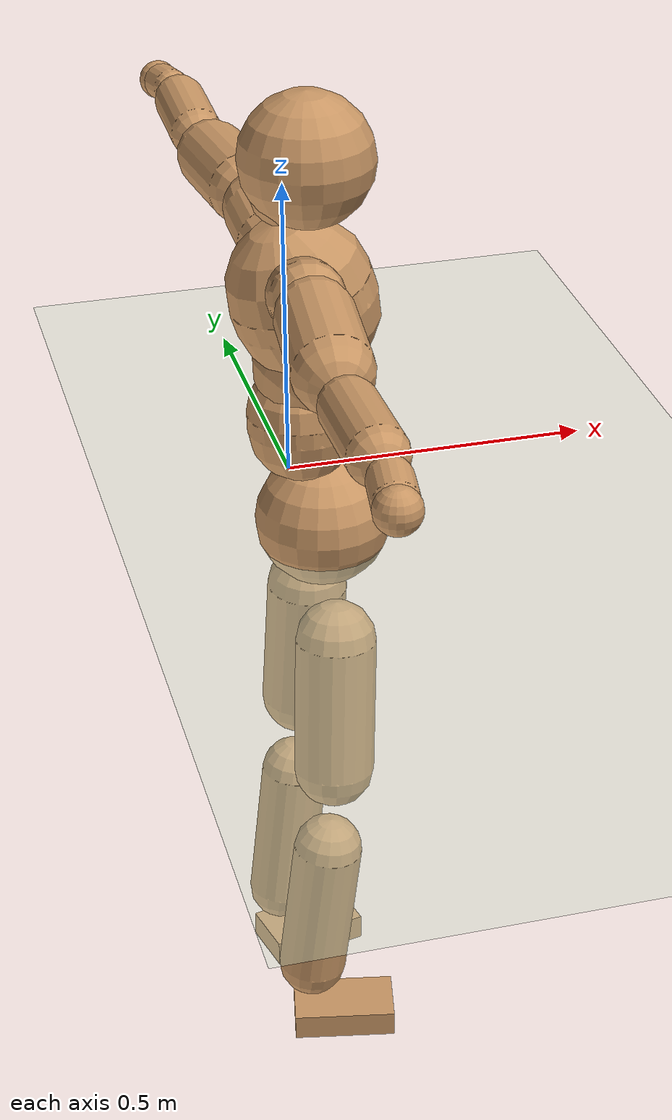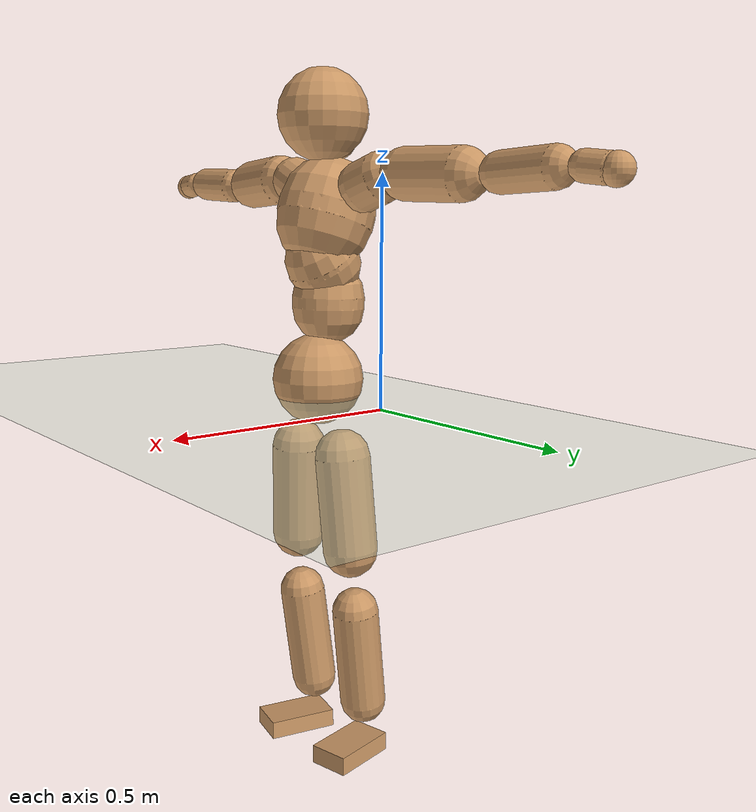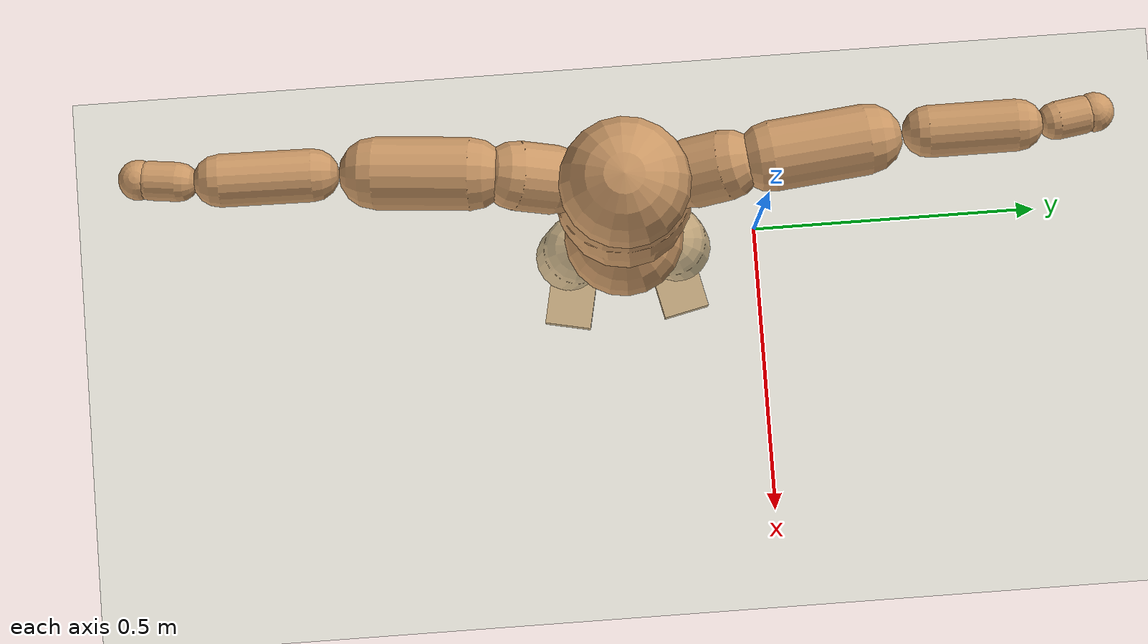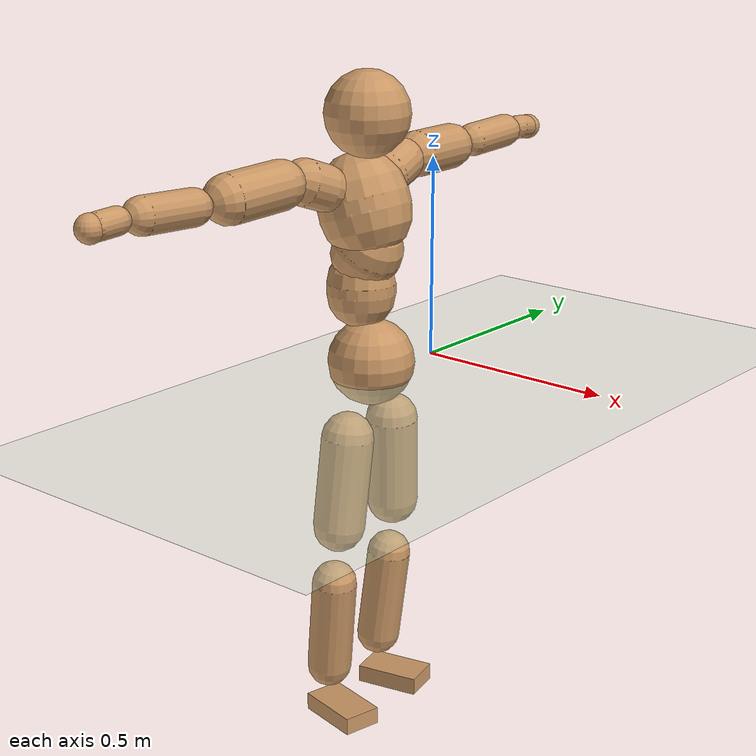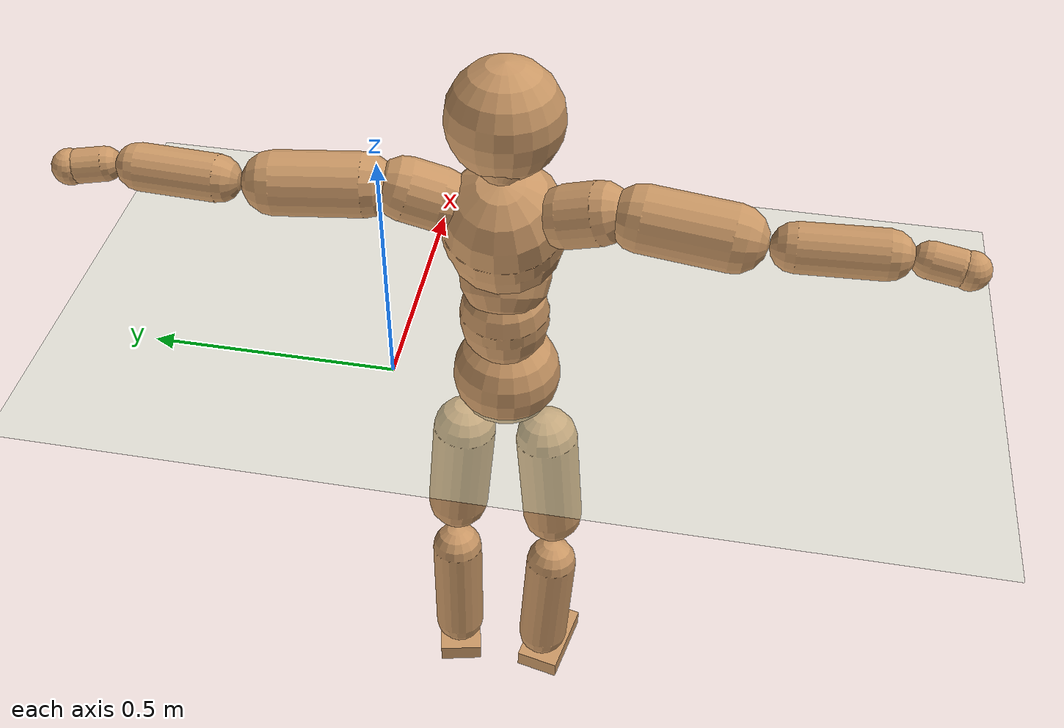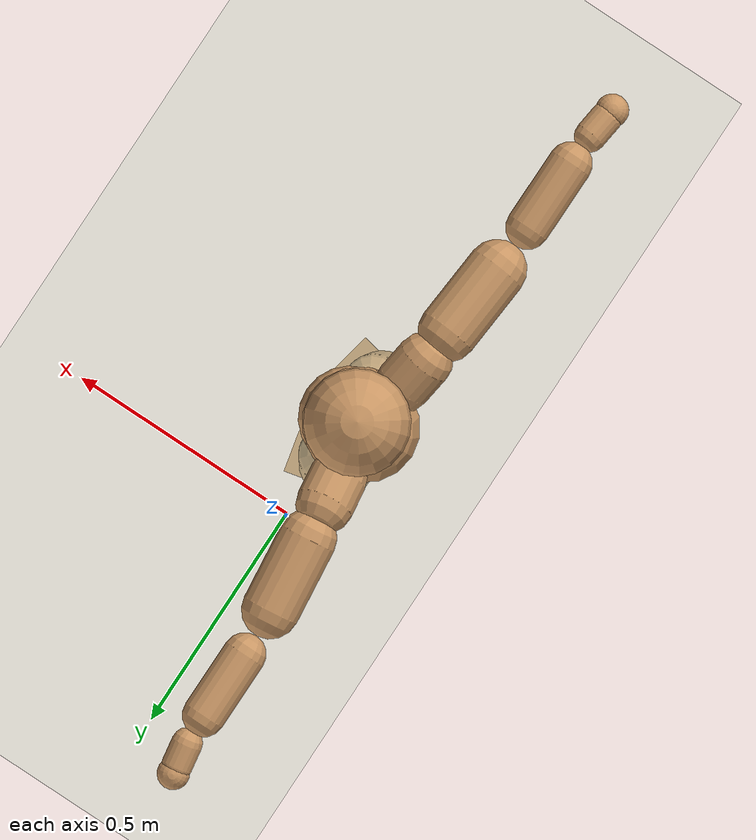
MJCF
<mujoco model="humanoid">
  <compiler coordinate="local"/>
  <default>
    <joint damping="0.0" armature="0.01" stiffness="0.0" limited="true"/>
    <geom conaffinity="1" condim="3" contype="7" margin="0.001" rgba="0.8 0.6 .4 1"/>
  </default>
  <asset>
    <texture type="skybox" builtin="gradient" rgb1=".4 .5 .6" rgb2="0 0 0" width="100" height="100"/>
    <texture builtin="flat" height="1278" mark="cross" markrgb="1 1 1" name="texgeom" random="0.01" rgb1="0.8 0.6 0.4" rgb2="0.8 0.6 0.4" type="cube" width="127"/>
    <texture builtin="checker" height="100" name="texplane" rgb1="0 0 0" rgb2="0.8 0.8 0.8" type="2d" width="100"/>
    <material name="MatPlane" reflectance="0.5" shininess="1" specular="1" texrepeat="60 60" texture="texplane"/>
    <material name="geom" texture="texgeom" texuniform="true"/>
  </asset>
  <worldbody>
    <light cutoff="100" diffuse="1 1 1" dir="-0 0 -1.3" directional="true" exponent="1" pos="0 0 1.3" specular=".1 .1 .1"/>
    <geom conaffinity="1" condim="3" name="floor" pos="0 0 0" rgba="0.8 0.9 0.8 1" size="100 100 .2" type="plane" material="MatPlane"/>
    <body name="Pelvis" pos="0.0003 -0.2325 0.0389">
      <freejoint name="Pelvis"/>
      <geom type="sphere" contype="1" conaffinity="1" density="500" size="0.1057" pos="0.0000 0.0000 0.0000" name="Pelvis"/>
      <body name="L_Hip" pos="-0.003 0.0807 -0.097">
        <joint name="L_Hip_x" type="hinge" pos="0 0 0" axis="1 0 0" stiffness="800" damping="80" armature="0.02" range="-180.0000 180.0000"/>
        <joint name="L_Hip_y" type="hinge" pos="0 0 0" axis="0 1 0" stiffness="800" damping="80" armature="0.02" range="-180.0000 180.0000"/>
        <joint name="L_Hip_z" type="hinge" pos="0 0 0" axis="0 0 1" stiffness="800" damping="80" armature="0.02" range="-180.0000 180.0000"/>
        <geom type="capsule" contype="1" conaffinity="1" density="500" fromto="-0.0034 0.0054 -0.0744 -0.0135 0.0215 -0.2978" size="0.0645" name="L_Hip"/>
        <body name="L_Knee" pos="-0.0169 0.0268 -0.3722">
          <joint name="L_Knee_x" type="hinge" pos="0 0 0" axis="1 0 0" stiffness="800" damping="80" armature="0.02" range="-180.0000 180.0000"/>
          <joint name="L_Knee_y" type="hinge" pos="0 0 0" axis="0 1 0" stiffness="800" damping="80" armature="0.02" range="-180.0000 180.0000"/>
          <joint name="L_Knee_z" type="hinge" pos="0 0 0" axis="0 0 1" stiffness="800" damping="80" armature="0.02" range="-180.0000 180.0000"/>
          <geom type="capsule" contype="1" conaffinity="1" density="500" fromto="-0.0097 -0.0024 -0.0798 -0.0388 -0.0095 -0.3194" size="0.0552" name="L_Knee"/>
          <body name="L_Ankle" pos="-0.0485 -0.0119 -0.3992">
            <joint name="L_Ankle_x" type="hinge" pos="0 0 0" axis="1 0 0" stiffness="800" damping="80" armature="0.02" range="-180.0000 180.0000"/>
            <joint name="L_Ankle_y" type="hinge" pos="0 0 0" axis="0 1 0" stiffness="800" damping="80" armature="0.02" range="-180.0000 180.0000"/>
            <joint name="L_Ankle_z" type="hinge" pos="0 0 0" axis="0 0 1" stiffness="800" damping="80" armature="0.02" range="-180.0000 180.0000"/>
            <geom type="box" contype="1" conaffinity="1" density="500" pos="0.0576 0.0130 -0.0287" size="0.0806 0.048 0.0221" quat="0.9939 0.0000 0.0000 0.1107" name="L_Ankle"/>
            <body name="L_Toe" pos="0.1153 0.026 -0.0575">
              <joint name="L_Toe_x" type="hinge" pos="0 0 0" axis="1 0 0" stiffness="500" damping="50" armature="0.02" range="-180.0000 180.0000"/>
              <joint name="L_Toe_y" type="hinge" pos="0 0 0" axis="0 1 0" stiffness="500" damping="50" armature="0.02" range="-180.0000 180.0000"/>
              <joint name="L_Toe_z" type="hinge" pos="0 0 0" axis="0 0 1" stiffness="500" damping="50" armature="0.02" range="-180.0000 180.0000"/>
              <geom type="box" contype="1" conaffinity="1" density="500" pos="0.0000 0.0000 0.0284" size="0.001 0.0024 0.0011" quat="0.9931 0.0000 0.0000 0.1169" name="L_Toe"/>
            </body>
          </body>
        </body>
      </body>
      <body name="R_Hip" pos="0.0011 -0.0779 -0.0978">
        <joint name="R_Hip_x" type="hinge" pos="0 0 0" axis="1 0 0" stiffness="800" damping="80" armature="0.02" range="-180.0000 180.0000"/>
        <joint name="R_Hip_y" type="hinge" pos="0 0 0" axis="0 1 0" stiffness="800" damping="80" armature="0.02" range="-180.0000 180.0000"/>
        <joint name="R_Hip_z" type="hinge" pos="0 0 0" axis="0 0 1" stiffness="800" damping="80" armature="0.02" range="-180.0000 180.0000"/>
        <geom type="capsule" contype="1" conaffinity="1" density="500" fromto="-0.0036 -0.0071 -0.0758 -0.0145 -0.0283 -0.3032" size="0.0637" name="R_Hip"/>
        <body name="R_Knee" pos="-0.0181 -0.0354 -0.379">
          <joint name="R_Knee_x" type="hinge" pos="0 0 0" axis="1 0 0" stiffness="800" damping="80" armature="0.02" range="-180.0000 180.0000"/>
          <joint name="R_Knee_y" type="hinge" pos="0 0 0" axis="0 1 0" stiffness="800" damping="80" armature="0.02" range="-180.0000 180.0000"/>
          <joint name="R_Knee_z" type="hinge" pos="0 0 0" axis="0 0 1" stiffness="800" damping="80" armature="0.02" range="-180.0000 180.0000"/>
          <geom type="capsule" contype="1" conaffinity="1" density="500" fromto="-0.0091 0.0030 -0.0803 -0.0366 0.0120 -0.3213" size="0.0554" name="R_Knee"/>
          <body name="R_Ankle" pos="-0.0457 0.015 -0.4016">
            <joint name="R_Ankle_x" type="hinge" pos="0 0 0" axis="1 0 0" stiffness="800" damping="80" armature="0.02" range="-180.0000 180.0000"/>
            <joint name="R_Ankle_y" type="hinge" pos="0 0 0" axis="0 1 0" stiffness="800" damping="80" armature="0.02" range="-180.0000 180.0000"/>
            <joint name="R_Ankle_z" type="hinge" pos="0 0 0" axis="0 0 1" stiffness="800" damping="80" armature="0.02" range="-180.0000 180.0000"/>
            <geom type="box" contype="1" conaffinity="1" density="500" pos="0.0600 -0.0124 -0.0253" size="0.0833 0.0481 0.0217" quat="0.9948 0.0000 0.0000 -0.1020" name="R_Ankle"/>
            <body name="R_Toe" pos="0.1201 -0.0249 -0.0507">
              <joint name="R_Toe_x" type="hinge" pos="0 0 0" axis="1 0 0" stiffness="500" damping="50" armature="0.02" range="-180.0000 180.0000"/>
              <joint name="R_Toe_y" type="hinge" pos="0 0 0" axis="0 1 0" stiffness="500" damping="50" armature="0.02" range="-180.0000 180.0000"/>
              <joint name="R_Toe_z" type="hinge" pos="0 0 0" axis="0 0 1" stiffness="500" damping="50" armature="0.02" range="-180.0000 180.0000"/>
              <geom type="box" contype="1" conaffinity="1" density="500" pos="0.0000 0.0000 0.0267" size="0.001 0.0024 0.0012" quat="0.9957 0.0000 0.0000 -0.0926" name="R_Toe"/>
            </body>
          </body>
        </body>
      </body>
      <body name="Torso" pos="-0.0302 -0.0021 0.1122">
        <joint name="Torso_x" type="hinge" pos="0 0 0" axis="1 0 0" stiffness="1000" damping="100" armature="0.02" range="-180.0000 180.0000"/>
        <joint name="Torso_y" type="hinge" pos="0 0 0" axis="0 1 0" stiffness="1000" damping="100" armature="0.02" range="-180.0000 180.0000"/>
        <joint name="Torso_z" type="hinge" pos="0 0 0" axis="0 0 1" stiffness="1000" damping="100" armature="0.02" range="-180.0000 180.0000"/>
        <geom type="capsule" contype="1" conaffinity="1" density="500" fromto="-0.0010 0.0019 0.0775 -0.0007 0.0013 0.0516" size="0.0836" name="Torso"/>
        <body name="Spine" pos="-0.0016 0.0032 0.1291">
          <joint name="Spine_x" type="hinge" pos="0 0 0" axis="1 0 0" stiffness="1000" damping="100" armature="0.02" range="-180.0000 180.0000"/>
          <joint name="Spine_y" type="hinge" pos="0 0 0" axis="0 1 0" stiffness="1000" damping="100" armature="0.02" range="-180.0000 180.0000"/>
          <joint name="Spine_z" type="hinge" pos="0 0 0" axis="0 0 1" stiffness="1000" damping="100" armature="0.02" range="-180.0000 180.0000"/>
          <geom type="capsule" contype="1" conaffinity="1" density="500" fromto="0.0206 0.0010 0.0319 0.0137 0.0007 0.0213" size="0.0852" name="Spine"/>
          <body name="Chest" pos="0.0343 0.0016 0.0531">
            <joint name="Chest_x" type="hinge" pos="0 0 0" axis="1 0 0" stiffness="1000" damping="100" armature="0.02" range="-180.0000 180.0000"/>
            <joint name="Chest_y" type="hinge" pos="0 0 0" axis="0 1 0" stiffness="1000" damping="100" armature="0.02" range="-180.0000 180.0000"/>
            <joint name="Chest_z" type="hinge" pos="0 0 0" axis="0 0 1" stiffness="1000" damping="100" armature="0.02" range="-180.0000 180.0000"/>
            <geom type="capsule" contype="1" conaffinity="1" density="500" fromto="-0.0321 -0.0004 0.0997 -0.0214 -0.0003 0.0664" size="0.1112" name="Chest"/>
            <body name="Neck" pos="-0.0682 -0.0007 0.2341">
              <joint name="Neck_x" type="hinge" pos="0 0 0" axis="1 0 0" stiffness="500" damping="50" armature="0.02" range="-180.0000 180.0000"/>
              <joint name="Neck_y" type="hinge" pos="0 0 0" axis="0 1 0" stiffness="500" damping="50" armature="0.02" range="-180.0000 180.0000"/>
              <joint name="Neck_z" type="hinge" pos="0 0 0" axis="0 0 1" stiffness="500" damping="50" armature="0.02" range="-180.0000 180.0000"/>
              <geom type="capsule" contype="1" conaffinity="1" density="500" fromto="0.0101 0.0005 0.0127 0.0404 0.0018 0.0508" size="0.0448" name="Neck"/>
              <body name="Head" pos="0.0505 0.0023 0.0635">
                <joint name="Head_x" type="hinge" pos="0 0 0" axis="1 0 0" stiffness="500" damping="50" armature="0.02" range="-180.0000 180.0000"/>
                <joint name="Head_y" type="hinge" pos="0 0 0" axis="0 1 0" stiffness="500" damping="50" armature="0.02" range="-180.0000 180.0000"/>
                <joint name="Head_z" type="hinge" pos="0 0 0" axis="0 0 1" stiffness="500" damping="50" armature="0.02" range="-180.0000 180.0000"/>
                <geom type="sphere" contype="1" conaffinity="1" density="500" size="0.1025" pos="0.0000 0.0000 0.0000" name="Head"/>
              </body>
            </body>
            <body name="L_Thorax" pos="-0.0433 0.0894 0.1335">
              <joint name="L_Thorax_x" type="hinge" pos="0 0 0" axis="1 0 0" stiffness="500" damping="50" armature="0.02" range="-180.0000 180.0000"/>
              <joint name="L_Thorax_y" type="hinge" pos="0 0 0" axis="0 1 0" stiffness="500" damping="50" armature="0.02" range="-180.0000 180.0000"/>
              <joint name="L_Thorax_z" type="hinge" pos="0 0 0" axis="0 0 1" stiffness="500" damping="50" armature="0.02" range="-180.0000 180.0000"/>
              <geom type="capsule" contype="1" conaffinity="1" density="500" fromto="-0.0024 0.0191 0.0064 -0.0095 0.0764 0.0256" size="0.0567" name="L_Thorax"/>
              <body name="L_Shoulder" pos="-0.0119 0.0955 0.032">
                <joint name="L_Shoulder_x" type="hinge" pos="0 0 0" axis="1 0 0" stiffness="500" damping="50" armature="0.02" range="-720.0000 720.0000"/>
                <joint name="L_Shoulder_y" type="hinge" pos="0 0 0" axis="0 1 0" stiffness="500" damping="50" armature="0.02" range="-720.0000 720.0000"/>
                <joint name="L_Shoulder_z" type="hinge" pos="0 0 0" axis="0 0 1" stiffness="500" damping="50" armature="0.02" range="-720.0000 720.0000"/>
                <geom type="capsule" contype="1" conaffinity="1" density="500" fromto="-0.0055 0.0516 -0.0014 -0.0220 0.2063 -0.0057" size="0.0567" name="L_Shoulder"/>
                <body name="L_Elbow" pos="-0.0275 0.2579 -0.0071">
                  <joint name="L_Elbow_x" type="hinge" pos="0 0 0" axis="1 0 0" stiffness="500" damping="50" armature="0.02" range="-720.0000 720.0000"/>
                  <joint name="L_Elbow_y" type="hinge" pos="0 0 0" axis="0 1 0" stiffness="500" damping="50" armature="0.02" range="-720.0000 720.0000"/>
                  <joint name="L_Elbow_z" type="hinge" pos="0 0 0" axis="0 0 1" stiffness="500" damping="50" armature="0.02" range="-720.0000 720.0000"/>
                  <geom type="capsule" contype="1" conaffinity="1" density="500" fromto="0.0002 0.0467 0.0018 0.0008 0.1870 0.0072" size="0.042" name="L_Elbow"/>
                  <body name="L_Wrist" pos="0.001 0.2337 0.009">
                    <joint name="L_Wrist_x" type="hinge" pos="0 0 0" axis="1 0 0" stiffness="300" damping="30" armature="0.02" range="-180.0000 180.0000"/>
                    <joint name="L_Wrist_y" type="hinge" pos="0 0 0" axis="0 1 0" stiffness="300" damping="30" armature="0.02" range="-180.0000 180.0000"/>
                    <joint name="L_Wrist_z" type="hinge" pos="0 0 0" axis="0 0 1" stiffness="300" damping="30" armature="0.02" range="-180.0000 180.0000"/>
                    <geom type="capsule" contype="1" conaffinity="1" density="500" fromto="-0.0025 0.0158 -0.0019 -0.0101 0.0631 -0.0074" size="0.0305" name="L_Wrist"/>
                    <body name="L_Hand" pos="-0.0127 0.0788 -0.0093">
                      <joint name="L_Hand_x" type="hinge" pos="0 0 0" axis="1 0 0" stiffness="300" damping="30" armature="0.02" range="-180.0000 180.0000"/>
                      <joint name="L_Hand_y" type="hinge" pos="0 0 0" axis="0 1 0" stiffness="300" damping="30" armature="0.02" range="-180.0000 180.0000"/>
                      <joint name="L_Hand_z" type="hinge" pos="0 0 0" axis="0 0 1" stiffness="300" damping="30" armature="0.02" range="-180.0000 180.0000"/>
                      <geom type="sphere" contype="1" conaffinity="1" density="500" size="0.0319" pos="0.0000 0.0000 0.0000" name="L_Hand"/>
                    </body>
                  </body>
                </body>
              </body>
            </body>
            <body name="R_Thorax" pos="-0.049 -0.0908 0.1307">
              <joint name="R_Thorax_x" type="hinge" pos="0 0 0" axis="1 0 0" stiffness="500" damping="50" armature="0.02" range="-180.0000 180.0000"/>
              <joint name="R_Thorax_y" type="hinge" pos="0 0 0" axis="0 1 0" stiffness="500" damping="50" armature="0.02" range="-180.0000 180.0000"/>
              <joint name="R_Thorax_z" type="hinge" pos="0 0 0" axis="0 0 1" stiffness="500" damping="50" armature="0.02" range="-180.0000 180.0000"/>
              <geom type="capsule" contype="1" conaffinity="1" density="500" fromto="-0.0028 -0.0197 0.0072 -0.0111 -0.0787 0.0288" size="0.0557" name="R_Thorax"/>
              <body name="R_Shoulder" pos="-0.0139 -0.0983 0.036">
                <joint name="R_Shoulder_x" type="hinge" pos="0 0 0" axis="1 0 0" stiffness="500" damping="50" armature="0.02" range="-720.0000 720.0000"/>
                <joint name="R_Shoulder_y" type="hinge" pos="0 0 0" axis="0 1 0" stiffness="500" damping="50" armature="0.02" range="-720.0000 720.0000"/>
                <joint name="R_Shoulder_z" type="hinge" pos="0 0 0" axis="0 0 1" stiffness="500" damping="50" armature="0.02" range="-720.0000 720.0000"/>
                <geom type="capsule" contype="1" conaffinity="1" density="500" fromto="-0.0043 -0.0507 -0.0029 -0.0173 -0.2028 -0.0116" size="0.0586" name="R_Shoulder"/>
                <body name="R_Elbow" pos="-0.0216 -0.2535 -0.0145">
                  <joint name="R_Elbow_x" type="hinge" pos="0 0 0" axis="1 0 0" stiffness="500" damping="50" armature="0.02" range="-720.0000 720.0000"/>
                  <joint name="R_Elbow_y" type="hinge" pos="0 0 0" axis="0 1 0" stiffness="500" damping="50" armature="0.02" range="-720.0000 720.0000"/>
                  <joint name="R_Elbow_z" type="hinge" pos="0 0 0" axis="0 0 1" stiffness="500" damping="50" armature="0.02" range="-720.0000 720.0000"/>
                  <geom type="capsule" contype="1" conaffinity="1" density="500" fromto="-0.0004 -0.0489 0.0023 -0.0014 -0.1955 0.0094" size="0.0428" name="R_Elbow"/>
                  <body name="R_Wrist" pos="-0.0018 -0.2444 0.0117">
                    <joint name="R_Wrist_x" type="hinge" pos="0 0 0" axis="1 0 0" stiffness="300" damping="30" armature="0.02" range="-180.0000 180.0000"/>
                    <joint name="R_Wrist_y" type="hinge" pos="0 0 0" axis="0 1 0" stiffness="300" damping="30" armature="0.02" range="-180.0000 180.0000"/>
                    <joint name="R_Wrist_z" type="hinge" pos="0 0 0" axis="0 0 1" stiffness="300" damping="30" armature="0.02" range="-180.0000 180.0000"/>
                    <geom type="capsule" contype="1" conaffinity="1" density="500" fromto="-0.0021 -0.0161 -0.0014 -0.0083 -0.0644 -0.0057" size="0.0314" name="R_Wrist"/>
                    <body name="R_Hand" pos="-0.0104 -0.0805 -0.0072">
                      <joint name="R_Hand_x" type="hinge" pos="0 0 0" axis="1 0 0" stiffness="300" damping="30" armature="0.02" range="-180.0000 180.0000"/>
                      <joint name="R_Hand_y" type="hinge" pos="0 0 0" axis="0 1 0" stiffness="300" damping="30" armature="0.02" range="-180.0000 180.0000"/>
                      <joint name="R_Hand_z" type="hinge" pos="0 0 0" axis="0 0 1" stiffness="300" damping="30" armature="0.02" range="-180.0000 180.0000"/>
                      <geom type="sphere" contype="1" conaffinity="1" density="500" size="0.0325" pos="0.0000 0.0000 0.0000" name="R_Hand"/>
                    </body>
                  </body>
                </body>
              </body>
            </body>
          </body>
        </body>
      </body>
    </body>
  </worldbody>
  <actuator>
    <motor name="L_Hip_x" joint="L_Hip_x" gear="500"/>
    <motor name="L_Hip_y" joint="L_Hip_y" gear="500"/>
    <motor name="L_Hip_z" joint="L_Hip_z" gear="500"/>
    <motor name="L_Knee_x" joint="L_Knee_x" gear="500"/>
    <motor name="L_Knee_y" joint="L_Knee_y" gear="500"/>
    <motor name="L_Knee_z" joint="L_Knee_z" gear="500"/>
    <motor name="L_Ankle_x" joint="L_Ankle_x" gear="500"/>
    <motor name="L_Ankle_y" joint="L_Ankle_y" gear="500"/>
    <motor name="L_Ankle_z" joint="L_Ankle_z" gear="500"/>
    <motor name="L_Toe_x" joint="L_Toe_x" gear="500"/>
    <motor name="L_Toe_y" joint="L_Toe_y" gear="500"/>
    <motor name="L_Toe_z" joint="L_Toe_z" gear="500"/>
    <motor name="R_Hip_x" joint="R_Hip_x" gear="500"/>
    <motor name="R_Hip_y" joint="R_Hip_y" gear="500"/>
    <motor name="R_Hip_z" joint="R_Hip_z" gear="500"/>
    <motor name="R_Knee_x" joint="R_Knee_x" gear="500"/>
    <motor name="R_Knee_y" joint="R_Knee_y" gear="500"/>
    <motor name="R_Knee_z" joint="R_Knee_z" gear="500"/>
    <motor name="R_Ankle_x" joint="R_Ankle_x" gear="500"/>
    <motor name="R_Ankle_y" joint="R_Ankle_y" gear="500"/>
    <motor name="R_Ankle_z" joint="R_Ankle_z" gear="500"/>
    <motor name="R_Toe_x" joint="R_Toe_x" gear="500"/>
    <motor name="R_Toe_y" joint="R_Toe_y" gear="500"/>
    <motor name="R_Toe_z" joint="R_Toe_z" gear="500"/>
    <motor name="Torso_x" joint="Torso_x" gear="500"/>
    <motor name="Torso_y" joint="Torso_y" gear="500"/>
    <motor name="Torso_z" joint="Torso_z" gear="500"/>
    <motor name="Spine_x" joint="Spine_x" gear="500"/>
    <motor name="Spine_y" joint="Spine_y" gear="500"/>
    <motor name="Spine_z" joint="Spine_z" gear="500"/>
    <motor name="Chest_x" joint="Chest_x" gear="500"/>
    <motor name="Chest_y" joint="Chest_y" gear="500"/>
    <motor name="Chest_z" joint="Chest_z" gear="500"/>
    <motor name="Neck_x" joint="Neck_x" gear="500"/>
    <motor name="Neck_y" joint="Neck_y" gear="500"/>
    <motor name="Neck_z" joint="Neck_z" gear="500"/>
    <motor name="Head_x" joint="Head_x" gear="500"/>
    <motor name="Head_y" joint="Head_y" gear="500"/>
    <motor name="Head_z" joint="Head_z" gear="500"/>
    <motor name="L_Thorax_x" joint="L_Thorax_x" gear="500"/>
    <motor name="L_Thorax_y" joint="L_Thorax_y" gear="500"/>
    <motor name="L_Thorax_z" joint="L_Thorax_z" gear="500"/>
    <motor name="L_Shoulder_x" joint="L_Shoulder_x" gear="500"/>
    <motor name="L_Shoulder_y" joint="L_Shoulder_y" gear="500"/>
    <motor name="L_Shoulder_z" joint="L_Shoulder_z" gear="500"/>
    <motor name="L_Elbow_x" joint="L_Elbow_x" gear="500"/>
    <motor name="L_Elbow_y" joint="L_Elbow_y" gear="500"/>
    <motor name="L_Elbow_z" joint="L_Elbow_z" gear="500"/>
    <motor name="L_Wrist_x" joint="L_Wrist_x" gear="500"/>
    <motor name="L_Wrist_y" joint="L_Wrist_y" gear="500"/>
    <motor name="L_Wrist_z" joint="L_Wrist_z" gear="500"/>
    <motor name="L_Hand_x" joint="L_Hand_x" gear="500"/>
    <motor name="L_Hand_y" joint="L_Hand_y" gear="500"/>
    <motor name="L_Hand_z" joint="L_Hand_z" gear="500"/>
    <motor name="R_Thorax_x" joint="R_Thorax_x" gear="500"/>
    <motor name="R_Thorax_y" joint="R_Thorax_y" gear="500"/>
    <motor name="R_Thorax_z" joint="R_Thorax_z" gear="500"/>
    <motor name="R_Shoulder_x" joint="R_Shoulder_x" gear="500"/>
    <motor name="R_Shoulder_y" joint="R_Shoulder_y" gear="500"/>
    <motor name="R_Shoulder_z" joint="R_Shoulder_z" gear="500"/>
    <motor name="R_Elbow_x" joint="R_Elbow_x" gear="500"/>
    <motor name="R_Elbow_y" joint="R_Elbow_y" gear="500"/>
    <motor name="R_Elbow_z" joint="R_Elbow_z" gear="500"/>
    <motor name="R_Wrist_x" joint="R_Wrist_x" gear="500"/>
    <motor name="R_Wrist_y" joint="R_Wrist_y" gear="500"/>
    <motor name="R_Wrist_z" joint="R_Wrist_z" gear="500"/>
    <motor name="R_Hand_x" joint="R_Hand_x" gear="500"/>
    <motor name="R_Hand_y" joint="R_Hand_y" gear="500"/>
    <motor name="R_Hand_z" joint="R_Hand_z" gear="500"/>
  </actuator>
  <contact>
    <exclude body1="Torso" body2="Chest"/>
    <exclude body1="Head" body2="Chest"/>
    <exclude body1="R_Knee" body2="R_Toe"/>
    <exclude body1="R_Knee" body2="L_Ankle"/>
    <exclude body1="R_Knee" body2="L_Toe"/>
    <exclude body1="L_Knee" body2="L_Toe"/>
    <exclude body1="L_Knee" body2="R_Ankle"/>
    <exclude body1="L_Knee" body2="R_Toe"/>
    <exclude body1="L_Shoulder" body2="Chest"/>
    <exclude body1="R_Shoulder" body2="Chest"/>
  </contact>
  <sensor/>
  <size njmax="700" nconmax="700"/>
</mujoco>
